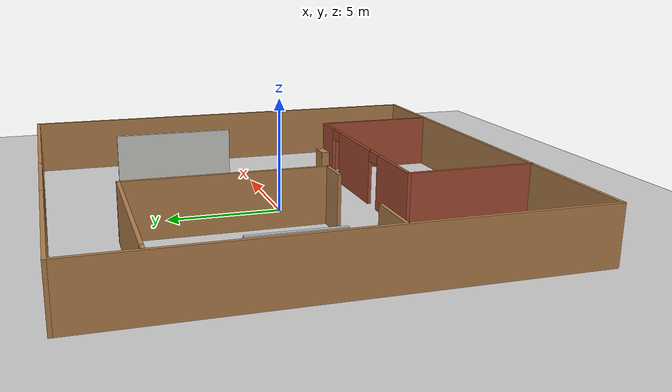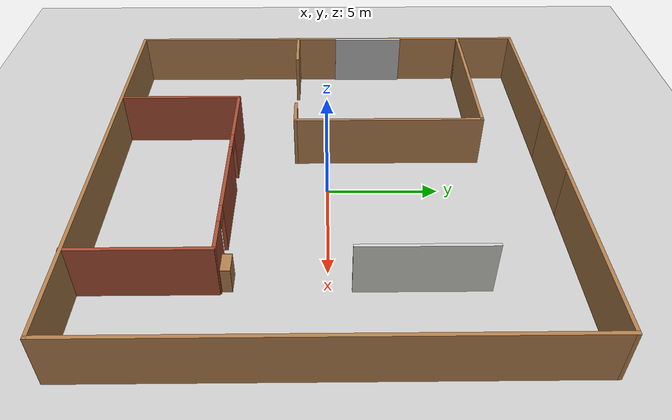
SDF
<sdf version="1.7">
 <world name="default">
  <scene><shadows>false</shadows></scene>
  <model name="ground_plane">
   <static>1</static>
   <link name="link">
    <collision name="collision">
     <geometry><plane><normal>0 0 1</normal><size>100 100</size></plane></geometry>
     <surface><friction><ode><mu>100</mu><mu2>50</mu2></ode></friction></surface>
    </collision>
    <visual name="visual">
     <cast_shadows>0</cast_shadows>
     <geometry><plane><normal>0 0 1</normal><size>100 100</size></plane></geometry>
     <material>
      <script><uri>file://media/materials/scripts/gazebo.material</uri><name>Gazebo/Grey</name></script>
     </material>
    </visual>
   </link>
  </model>
  <gravity>0 0 -9.8</gravity>
  <magnetic_field>6e-06 2.3e-05 -4.2e-05</magnetic_field>
  <atmosphere type="adiabatic"/>
  <physics type="ode">
   <max_step_size>0.001</max_step_size>
   <real_time_factor>1</real_time_factor>
   <real_time_update_rate>1000</real_time_update_rate>
  </physics>
  <scene><ambient>0.4 0.4 0.4 1</ambient><background>0.7 0.7 0.7 1</background><shadows>false</shadows></scene>
  <audio><device>default</device></audio>
  <spherical_coordinates>
   <surface_model>EARTH_WGS84</surface_model>
   <latitude_deg>0</latitude_deg>
   <longitude_deg>0</longitude_deg>
   <elevation>0</elevation>
   <heading_deg>0</heading_deg>
  </spherical_coordinates>
  <light name="sun" type="directional">
   <pose>-0.441288 0.277363 10 0 -0 0</pose>
   <diffuse>0.8 0.8 0.8 1</diffuse>
   <specular>0.2 0.2 0.2 1</specular>
   <attenuation>
    <range>1000</range>
    <constant>0.9</constant>
    <linear>0.01</linear>
    <quadratic>0.001</quadratic>
   </attenuation>
   <direction>-0.5 0.1 -0.9</direction>
  </light>
  <model name="Nxtwave_world">
   <pose>0.017629 0.087442 0 0 -0 -3.14</pose>
   <link name="Wall_0">
    <collision name="Wall_0_Collision">
     <geometry><box><size>4.25 0.15 2.5</size></box></geometry>
     <pose>0 0 1.25 0 -0 0</pose>
    </collision>
    <visual name="Wall_0_Visual">
     <pose>0 0 1.25 0 -0 0</pose>
     <geometry><box><size>4.25 0.15 2.5</size></box></geometry>
     <material>
      <script><uri>file://media/materials/scripts/gazebo.material</uri><name>Gazebo/Wood</name></script>
      <ambient>1 1 1 1</ambient>
     </material>
     <meta><layer>0</layer></meta>
    </visual>
    <pose>0.475 -9.93637 0 0 -0 0</pose>
   </link>
   <link name="Wall_10">
    <collision name="Wall_10_Collision">
     <geometry><box><size>5.75 0.15 2.5</size></box></geometry>
     <pose>0 0 1.25 0 -0 0</pose>
    </collision>
    <visual name="Wall_10_Visual">
     <pose>0 0 1.25 0 -0 0</pose>
     <geometry><box><size>5.75 0.15 2.5</size></box></geometry>
     <material>
      <script><uri>file://media/materials/scripts/gazebo.material</uri><name>Gazebo/Bricks</name></script>
      <ambient>1 1 1 1</ambient>
     </material>
     <meta><layer>0</layer></meta>
    </visual>
    <pose>-5.98179 7.13638 0 0 -0 1.5708</pose>
   </link>
   <link name="Wall_12">
    <collision name="Wall_12_Collision">
     <geometry><box><size>5.75 0.15 2.5</size></box></geometry>
     <pose>0 0 1.25 0 -0 0</pose>
    </collision>
    <visual name="Wall_12_Visual">
     <pose>0 0 1.25 0 -0 0</pose>
     <geometry><box><size>5.75 0.15 2.5</size></box></geometry>
     <material>
      <script><uri>file://media/materials/scripts/gazebo.material</uri><name>Gazebo/Bricks</name></script>
      <ambient>1 1 1 1</ambient>
     </material>
     <meta><layer>0</layer></meta>
    </visual>
    <pose>4.17051 7.0893 0 0 -0 -1.5708</pose>
   </link>
   <link name="Wall_13">
    <pose>-0.879492 4.2893 0 0 -0 3.14159</pose>
    <visual name="Wall_13_Visual_0">
     <pose>-3.53844 0 1.25 0 -0 0</pose>
     <geometry><box><size>3.17312 0.15 2.5</size></box></geometry>
     <material>
      <script><uri>file://media/materials/scripts/gazebo.material</uri><name>Gazebo/Bricks</name></script>
      <ambient>1 1 1 1</ambient>
     </material>
     <meta><layer>0</layer></meta>
    </visual>
    <collision name="Wall_13_Collision_0">
     <geometry><box><size>3.17312 0.15 2.5</size></box></geometry>
     <pose>-3.53844 0 1.25 0 -0 0</pose>
    </collision>
    <visual name="Wall_13_Visual_1">
     <pose>0.853569 0 1.25 0 -0 0</pose>
     <geometry><box><size>3.81089 0.15 2.5</size></box></geometry>
     <material>
      <script><uri>file://media/materials/scripts/gazebo.material</uri><name>Gazebo/Bricks</name></script>
      <ambient>1 1 1 1</ambient>
     </material>
     <meta><layer>0</layer></meta>
    </visual>
    <collision name="Wall_13_Collision_1">
     <geometry><box><size>3.81089 0.15 2.5</size></box></geometry>
     <pose>0.853569 0 1.25 0 -0 0</pose>
    </collision>
    <visual name="Wall_13_Visual_2">
     <pose>4.39201 0 1.25 0 -0 0</pose>
     <geometry><box><size>1.46598 0.15 2.5</size></box></geometry>
     <material>
      <script><uri>file://media/materials/scripts/gazebo.material</uri><name>Gazebo/Bricks</name></script>
      <ambient>1 1 1 1</ambient>
     </material>
     <meta><layer>0</layer></meta>
    </visual>
    <collision name="Wall_13_Collision_2">
     <geometry><box><size>1.46598 0.15 2.5</size></box></geometry>
     <pose>4.39201 0 1.25 0 -0 0</pose>
    </collision>
    <visual name="Wall_13_Visual_3">
     <pose>-1.50188 0 2.25 0 -0 0</pose>
     <geometry><box><size>0.9 0.15 0.5</size></box></geometry>
     <material>
      <script><uri>file://media/materials/scripts/gazebo.material</uri><name>Gazebo/Bricks</name></script>
      <ambient>1 1 1 1</ambient>
     </material>
     <meta><layer>0</layer></meta>
    </visual>
    <collision name="Wall_13_Collision_3">
     <geometry><box><size>0.9 0.15 0.5</size></box></geometry>
     <pose>-1.50188 0 2.25 0 -0 0</pose>
    </collision>
    <visual name="Wall_13_Visual_4">
     <pose>3.20902 0 2.25 0 -0 0</pose>
     <geometry><box><size>0.9 0.15 0.5</size></box></geometry>
     <material>
      <script><uri>file://media/materials/scripts/gazebo.material</uri><name>Gazebo/Bricks</name></script>
      <ambient>1 1 1 1</ambient>
     </material>
     <meta><layer>0</layer></meta>
    </visual>
    <collision name="Wall_13_Collision_4">
     <geometry><box><size>0.9 0.15 0.5</size></box></geometry>
     <pose>3.20902 0 2.25 0 -0 0</pose>
    </collision>
   </link>
   <link name="Wall_15">
    <collision name="Wall_15_Collision">
     <geometry><box><size>2.25 0.15 2.5</size></box></geometry>
     <pose>0 0 1.25 0 -0 0</pose>
    </collision>
    <visual name="Wall_15_Visual">
     <pose>0 0 1.25 0 -0 0</pose>
     <geometry><box><size>2.25 0.15 2.5</size></box></geometry>
     <material>
      <script><uri>file://media/materials/scripts/gazebo.material</uri><name>Gazebo/Wood</name></script>
      <ambient>1 1 1 1</ambient>
     </material>
     <meta><layer>0</layer></meta>
    </visual>
    <pose>8.81064 1.57701 0 0 -0 3.14159</pose>
   </link>
   <link name="Wall_17">
    <collision name="Wall_17_Collision">
     <geometry><box><size>8.75 0.15 2.5</size></box></geometry>
     <pose>0 0 1.25 0 -0 0</pose>
    </collision>
    <visual name="Wall_17_Visual">
     <pose>0 0 1.25 0 -0 0</pose>
     <geometry><box><size>8.75 0.15 2.5</size></box></geometry>
     <material>
      <script><uri>file://media/materials/scripts/gazebo.material</uri><name>Gazebo/Wood</name></script>
      <ambient>1 1 1 1</ambient>
     </material>
     <meta><layer>0</layer></meta>
    </visual>
    <pose>2.21308 -2.76726 0 0 -0 -1.5708</pose>
   </link>
   <link name="Wall_18">
    <collision name="Wall_18_Collision">
     <geometry><box><size>7.5 0.15 2.5</size></box></geometry>
     <pose>0 0 1.25 0 -0 0</pose>
    </collision>
    <visual name="Wall_18_Visual">
     <pose>0 0 1.25 0 -0 0</pose>
     <geometry><box><size>7.5 0.15 2.5</size></box></geometry>
     <material>
      <script><uri>file://media/materials/scripts/gazebo.material</uri><name>Gazebo/Wood</name></script>
      <ambient>1 1 1 1</ambient>
     </material>
     <meta><layer>0</layer></meta>
    </visual>
    <pose>5.88808 -7.06726 0 0 -0 0</pose>
   </link>
   <link name="Wall_19">
    <collision name="Wall_19_Collision">
     <geometry><box><size>0.5 0.15 2.5</size></box></geometry>
     <pose>0 0 1.25 0 -0 0</pose>
    </collision>
    <visual name="Wall_19_Visual">
     <pose>0 0 1.25 0 -0 0</pose>
     <geometry><box><size>0.5 0.15 2.5</size></box></geometry>
     <material>
      <script><uri>file://media/materials/scripts/gazebo.material</uri><name>Gazebo/Wood</name></script>
      <ambient>1 1 1 1</ambient>
     </material>
     <meta><layer>0</layer></meta>
    </visual>
    <pose>9.73808 -7.06726 0 0 -0 0</pose>
   </link>
   <link name="Wall_2">
    <collision name="Wall_2_Collision">
     <geometry><box><size>8.5 0.15 2.5</size></box></geometry>
     <pose>0 0 1.25 0 -0 0</pose>
    </collision>
    <visual name="Wall_2_Visual">
     <pose>0 0 1.25 0 -0 0</pose>
     <geometry><box><size>8.5 0.15 2.5</size></box></geometry>
     <material>
      <script><uri>file://media/materials/scripts/gazebo.material</uri><name>Gazebo/Wood</name></script>
      <ambient>1 1 1 1</ambient>
     </material>
     <meta><layer>0</layer></meta>
    </visual>
    <pose>-5.75 -9.93637 0 0 -0 3.14159</pose>
   </link>
   <link name="Wall_21">
    <collision name="Wall_21_Collision">
     <geometry><box><size>1.5 0.15 2.5</size></box></geometry>
     <pose>0 0 1.25 0 -0 0</pose>
    </collision>
    <visual name="Wall_21_Visual">
     <pose>0 0 1.25 0 -0 0</pose>
     <geometry><box><size>1.5 0.15 2.5</size></box></geometry>
     <material>
      <script><uri>file://media/materials/scripts/gazebo.material</uri><name>Gazebo/Wood</name></script>
      <ambient>1 1 1 1</ambient>
     </material>
     <meta><layer>0</layer></meta>
    </visual>
    <pose>2.88808 1.53274 0 0 -0 0</pose>
   </link>
   <link name="Wall_3">
    <collision name="Wall_3_Collision">
     <geometry><box><size>20 0.15 2.5</size></box></geometry>
     <pose>0 0 1.25 0 -0 0</pose>
    </collision>
    <visual name="Wall_3_Visual">
     <pose>0 0 1.25 0 -0 0</pose>
     <geometry><box><size>20 0.15 2.5</size></box></geometry>
     <material>
      <script><uri>file://media/materials/scripts/gazebo.material</uri><name>Gazebo/Wood</name></script>
      <ambient>1 1 1 1</ambient>
     </material>
     <meta><layer>0</layer></meta>
    </visual>
    <pose>-9.925 -0.011375 0 0 -0 1.5708</pose>
   </link>
   <link name="Wall_4">
    <collision name="Wall_4_Collision">
     <geometry><box><size>20 0.15 2.5</size></box></geometry>
     <pose>0 0 1.25 0 -0 0</pose>
    </collision>
    <visual name="Wall_4_Visual">
     <pose>0 0 1.25 0 -0 0</pose>
     <geometry><box><size>20 0.15 2.5</size></box></geometry>
     <material>
      <script><uri>file://media/materials/scripts/gazebo.material</uri><name>Gazebo/Wood</name></script>
      <ambient>1 1 1 1</ambient>
     </material>
     <meta><layer>0</layer></meta>
    </visual>
    <pose>0 9.91362 0 0 -0 0</pose>
   </link>
   <link name="Wall_5">
    <collision name="Wall_5_Collision">
     <geometry><box><size>20 0.15 2.5</size></box></geometry>
     <pose>0 0 1.25 0 -0 0</pose>
    </collision>
    <visual name="Wall_5_Visual">
     <pose>0 0 1.25 0 -0 0</pose>
     <geometry><box><size>20 0.15 2.5</size></box></geometry>
     <material>
      <script><uri>file://media/materials/scripts/gazebo.material</uri><name>Gazebo/Wood</name></script>
      <ambient>1 1 1 1</ambient>
     </material>
     <meta><layer>0</layer></meta>
    </visual>
    <pose>9.925 -0.011375 0 0 -0 -1.5708</pose>
   </link>
   <link name="Wall_6">
    <collision name="Wall_6_Collision">
     <geometry><box><size>7.55 0.15 2.5</size></box></geometry>
     <pose>0 0 1.25 0 -0 0</pose>
    </collision>
    <visual name="Wall_6_Visual">
     <pose>0 0 1.25 0 -0 0</pose>
     <geometry><box><size>7.55 0.15 2.5</size></box></geometry>
     <material>
      <script><uri>file://media/materials/scripts/gazebo.material</uri><name>Gazebo/Wood</name></script>
      <ambient>1 1 1 1</ambient>
     </material>
     <meta><layer>0</layer></meta>
    </visual>
    <pose>6.225 -9.93637 0 0 -0 3.14159</pose>
   </link>
   <link name="Wall_8">
    <collision name="Wall_8_Collision">
     <geometry><box><size>5.5 0.15 2.5</size></box></geometry>
     <pose>0 0 1.25 0 -0 0</pose>
    </collision>
    <visual name="Wall_8_Visual">
     <pose>0 0 1.25 0 -0 0</pose>
     <geometry><box><size>5.5 0.15 2.5</size></box></geometry>
     <material>
      <script><uri>file://media/materials/scripts/gazebo.material</uri><name>Gazebo/CeilingTiled</name></script>
      <ambient>1 1 1 1</ambient>
     </material>
     <meta><layer>0</layer></meta>
    </visual>
    <pose>-5.88925 -3.58799 0 0 -0 1.5708</pose>
   </link>
   <static>1</static>
  </model>
  <model name="bookshelf">
   <static>1</static>
   <link name="link">
    <inertial><mass>1</mass></inertial>
    <collision name="back">
     <pose>0 0.005 0.6 0 -0 0</pose>
     <geometry><box><size>0.9 0.01 1.2</size></box></geometry>
    </collision>
    <visual name="visual1">
     <pose>0 0.005 0.6 0 -0 0</pose>
     <geometry><box><size>0.9 0.01 1.2</size></box></geometry>
     <material>
      <script><uri>file://media/materials/scripts/gazebo.material</uri><name>Gazebo/Wood</name></script>
     </material>
    </visual>
    <collision name="left_side">
     <pose>0.45 -0.195 0.6 0 -0 0</pose>
     <geometry><box><size>0.02 0.4 1.2</size></box></geometry>
    </collision>
    <visual name="visual2">
     <pose>0.45 -0.195 0.6 0 -0 0</pose>
     <geometry><box><size>0.02 0.4 1.2</size></box></geometry>
     <material>
      <script><uri>file://media/materials/scripts/gazebo.material</uri><name>Gazebo/Wood</name></script>
     </material>
    </visual>
    <collision name="right_side">
     <pose>-0.45 -0.195 0.6 0 -0 0</pose>
     <geometry><box><size>0.02 0.4 1.2</size></box></geometry>
    </collision>
    <visual name="visual3">
     <pose>-0.45 -0.195 0.6 0 -0 0</pose>
     <geometry><box><size>0.02 0.4 1.2</size></box></geometry>
     <material>
      <script><uri>file://media/materials/scripts/gazebo.material</uri><name>Gazebo/Wood</name></script>
     </material>
    </visual>
    <collision name="bottom">
     <pose>0 -0.195 0.03 0 -0 0</pose>
     <geometry><box><size>0.88 0.4 0.06</size></box></geometry>
    </collision>
    <visual name="visual4">
     <pose>0 -0.195 0.03 0 -0 0</pose>
     <geometry><box><size>0.88 0.4 0.06</size></box></geometry>
     <material>
      <script><uri>file://media/materials/scripts/gazebo.material</uri><name>Gazebo/Wood</name></script>
     </material>
    </visual>
    <collision name="top">
     <pose>0 -0.195 1.19 0 -0 0</pose>
     <geometry><box><size>0.88 0.4 0.02</size></box></geometry>
    </collision>
    <visual name="visual5">
     <pose>0 -0.195 1.19 0 -0 0</pose>
     <geometry><box><size>0.88 0.4 0.02</size></box></geometry>
     <material>
      <script><uri>file://media/materials/scripts/gazebo.material</uri><name>Gazebo/Wood</name></script>
     </material>
    </visual>
    <collision name="low_shelf">
     <pose>0 -0.195 0.43 0 -0 0</pose>
     <geometry><box><size>0.88 0.4 0.02</size></box></geometry>
    </collision>
    <visual name="visual6">
     <pose>0 -0.195 0.43 0 -0 0</pose>
     <geometry><box><size>0.88 0.4 0.02</size></box></geometry>
     <material>
      <script><uri>file://media/materials/scripts/gazebo.material</uri><name>Gazebo/Wood</name></script>
     </material>
    </visual>
    <collision name="high_shelf">
     <pose>0 -0.195 0.8 0 -0 0</pose>
     <geometry><box><size>0.88 0.4 0.02</size></box></geometry>
    </collision>
    <visual name="visual7">
     <pose>0 -0.195 0.8 0 -0 0</pose>
     <geometry><box><size>0.88 0.4 0.02</size></box></geometry>
     <material>
      <script><uri>file://media/materials/scripts/gazebo.material</uri><name>Gazebo/Wood</name></script>
     </material>
    </visual>
   </link>
   <pose>5.486 -3.71884 0 0 -0 0</pose>
  </model>
  <model name="car">
   <static>1</static>
   <link name="link">
    <collision name="collision">
     <geometry>
      <mesh><scale>0.5 0.5 0.5</scale><uri>model://final_logo_wall/meshes/final_logo_wall.stl</uri></mesh>
      <surface><friction><ode><mu>1.2</mu><mu2>1.2</mu2></ode></friction></surface>
     </geometry>
    </collision>
    <visual name="visual">
     <geometry>
      <mesh><scale>0.5 0.5 0.5</scale><uri>model://final_logo_wall/meshes/final_logo_wall.dae</uri></mesh>
     </geometry>
    </visual>
   </link>
   <pose>-9.74439 3.17896 1.29303 0 -0 1.56216</pose>
  </model>
 </world>
</sdf>
